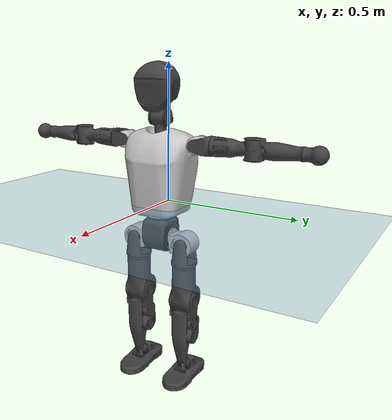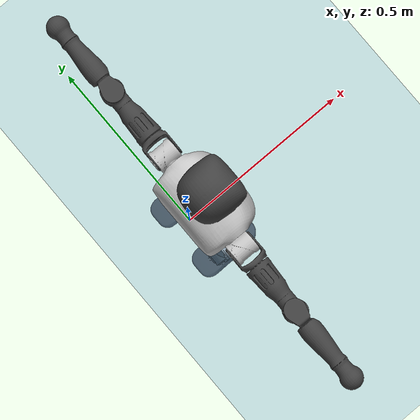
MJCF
<mujoco model="T1">
  <compiler angle="radian" assetdir="assets" balanceinertia="true" inertiafromgeom="false"/>

  <option timestep="0.005" density="1.2" viscosity="2e-05"/>

  <size nkey="1"/>

  <visual>
    <quality shadowsize="8192"/>
    <map shadowclip="0.5"/>
  </visual>

  <default>
    <default class="/">
      <joint armature="0.01" damping="0.01" frictionloss="0.1"/>
      <geom contype="0" conaffinity="0" group="1" solref="-1000 -80"/>
      <site size="0.01 0.005 0.005" group="5"/>
      <general forcelimited="true" biastype="affine" gainprm="25" biasprm="0 -25 -0.6"/>
      <default class="t1">
        <geom rgba="0.25 0.25 0.25 1"/>
        <default class="visual">
          <geom type="mesh" group="2"/>
        </default>
        <default class="collision">
          <geom group="3"/>
        </default>
        <default class="foot">
          <geom size="0.1115 0.05 0.015" type="box" condim="6" group="4" priority="1" solimp="0.015 1 0.015"/>
        </default>
        <default class="reward_collision_sphere">
          <geom group="5" rgba="1 0 0 1"/>
        </default>
      </default>
    </default>
  </default>

  <asset>
    <texture type="skybox" colorspace="auto" name="//unnamed_texture_0" builtin="gradient" rgb1="0.95 0.95 0.95" rgb2="0.95 0.95 0.95" width="100" height="600"/>
    <texture type="2d" colorspace="auto" name="texplane" builtin="checker" rgb1="0.345 0.575 0.748" rgb2="0.345 0.575 0.748" markrgb="1 1 1" width="512" height="512"/>
    <material name="MatPlane" class="/" texture="texplane" texuniform="true" texrepeat="2 2" specular="0.9"/>
    <mesh name="Trunk" class="/" file="Trunk.stl"/>
    <mesh name="H1" class="/" file="H1.stl"/>
    <mesh name="H2" class="/" file="H2.stl"/>
    <mesh name="AL1" class="/" file="AL1.stl"/>
    <mesh name="AL2" class="/" file="AL2.stl"/>
    <mesh name="AL3" class="/" file="AL3.stl"/>
    <mesh name="left_hand_link" class="/" file="left_hand_link.stl"/>
    <mesh name="AR1" class="/" file="AR1.stl"/>
    <mesh name="AR2" class="/" file="AR2.stl"/>
    <mesh name="AR3" class="/" file="AR3.stl"/>
    <mesh name="right_hand_link" class="/" file="right_hand_link.stl"/>
    <mesh name="Waist" class="/" file="Waist.stl"/>
    <mesh name="Hip_Pitch_Left" class="/" file="Hip_Pitch_Left.stl"/>
    <mesh name="Hip_Roll_Left" class="/" file="Hip_Roll_Left.stl"/>
    <mesh name="Hip_Yaw_Left" class="/" file="Hip_Yaw_Left.stl"/>
    <mesh name="Shank_Left" class="/" file="Shank_Left.stl"/>
    <mesh name="Ankle_Cross_Left" class="/" file="Ankle_Cross_Left.stl"/>
    <mesh name="left_foot_link" class="/" file="left_foot_link.stl"/>
    <mesh name="Hip_Pitch_Right" class="/" file="Hip_Pitch_Right.stl"/>
    <mesh name="Hip_Roll_Right" class="/" file="Hip_Roll_Right.stl"/>
    <mesh name="Hip_Yaw_Right" class="/" file="Hip_Yaw_Right.stl"/>
    <mesh name="Shank_Right" class="/" file="Shank_Right.stl"/>
    <mesh name="Ankle_Cross_Right" class="/" file="Ankle_Cross_Right.stl"/>
    <mesh name="right_foot_link" class="/" file="right_foot_link.stl"/>
  </asset>

  <worldbody>
    <geom name="floor" class="/" size="100 100 0.125" type="plane" group="0" material="MatPlane"/>
    <light name="toplight_shadow" class="/" pos="0 0 5" dir="0.0990148 0.0990148 -0.990148" type="directional" ambient="0.04 0.04 0.04" diffuse="0.55 0.55 0.55" specular="0.12 0.12 0.12"/>
    <light name="toplight_fill" class="/" pos="0 0 5" dir="0.0990148 0.0990148 -0.990148" type="directional" castshadow="false" ambient="0.04 0.04 0.04" diffuse="0.3 0.3 0.3" specular="0.08 0.08 0.08"/>
    <body name="trunk" childclass="t1" pos="3.52228e-05 0.000593536 -0.000294625" quat="1 -0.000117565 -9.44503e-05 0.000376963">
      <inertial pos="0.0463605 -0.000271939 0.10891" quat="0.999975 0.00123337 -0.00638034 0.00277762" mass="10.1619" diaginertia="0.0420463 0.0638207 0.0670881"/>
      <joint name="//unnamed_joint_0" type="free" armature="0" damping="0" frictionloss="0"/>
      <geom name="//unnamed_geom_1" class="visual" rgba="0.76 0.76 0.76 1" mesh="Trunk"/>
      <geom name="//unnamed_geom_2" class="collision" size="0.0713322 0.0951096 0.142664" pos="0.05126 0 0.124478" type="box"/>
      <geom name="//unnamed_geom_3" class="reward_collision_sphere" size="0.109376" pos="0.05126 0 0.103731"/>
      <geom name="//unnamed_geom_4" class="reward_collision_sphere" size="0.0142664" pos="0.05126 0.0817395 0"/>
      <geom name="//unnamed_geom_5" class="reward_collision_sphere" size="0.0142664" pos="0.05126 -0.0817395 0"/>
      <geom name="//unnamed_geom_6" class="reward_collision_sphere" size="0.0142664" pos="0.05126 0.102896 0.186716"/>
      <geom name="//unnamed_geom_7" class="reward_collision_sphere" size="0.0142664" pos="0.05126 -0.102896 0.186716"/>
      <site name="imu" pos="-0.0042321 2.29494e-05 0.00428237" size="0.00951096"/>
      <camera name="track" pos="0 -1.92328 0" quat="0.707107 0.707107 0 0" mode="trackcom"/>
      <camera name="ego_camera" pos="0.104229 0 0.435671" quat="-0.5 -0.5 0.5 0.5"/>
      <body name="H1" pos="0.0534245 -0.000245718 0.251774" quat="1 -6.96471e-05 5.59902e-05 7.89898e-06">
        <inertial pos="-0.000865661 -0.00131924 0.0595504" quat="0.763896 -0.0125527 0.00104183 0.645216" mass="0.381196" diaginertia="0.000111041 0.000184679 0.00017949"/>
        <joint name="AAHead_yaw" pos="0 0 0" axis="-0.000756842 0.00163428 0.999998" range="-1.58806 1.56819" armature="0.00945726" damping="0.00849215" frictionloss="0.0938099"/>
        <geom name="//unnamed_geom_8" class="visual" mesh="H1"/>
        <body name="H2" pos="0.000158933 -0.000897418 0.0635947" quat="1 -6.0218e-06 -6.43312e-06 -3.65948e-06">
          <inertial pos="0.00532424 0.00129216 0.101954" quat="0.988338 0.108815 -0.074225 -0.0764095" mass="0.538624" diaginertia="0.000921886 0.00156991 0.00206038"/>
          <joint name="Head_pitch" pos="0 0 0" axis="-0.000786536 -0.999999 0.000997635" range="-1.22643 0.341462" armature="0.00914506" damping="0.00802811" frictionloss="0.0951244"/>
          <geom name="//unnamed_geom_9" class="visual" mesh="H2"/>
          <geom name="//unnamed_geom_10" class="collision" size="0.0760877" pos="0.00854334 0 0.114104"/>
          <geom name="//unnamed_geom_11" class="reward_collision_sphere" size="0.0855986" pos="0.0170867 0 0.103731"/>
        </body>
      </body>
      <body name="AL1" pos="0.0503585 0.10277 0.227419" quat="1 0.000113538 0.0004544 -0.000120939">
        <inertial pos="0.0002959 0.0427918 0.000147709" quat="0.504529 0.495706 -0.503936 0.495757" mass="0.460013" diaginertia="0.000626941 0.00107033 0.000356747"/>
        <joint name="Left_Shoulder_Pitch" pos="0 0 0" axis="0.00127342 0.999996 0.00239791" range="-3.29406 1.22304" armature="0.00944899" damping="0.00604884" frictionloss="0.0919931"/>
        <geom name="//unnamed_geom_12" class="visual" rgba="0.76 0.76 0.76 1" mesh="AL1"/>
        <body name="AL2" pos="0.00124546 0.0458506 0.000310467" quat="1 -7.68003e-06 -1.03275e-05 -9.02217e-06">
          <inertial pos="0.00331003 0.0361422 0.000299115" quat="0.488293 0.51217 -0.488094 0.510898" mass="0.136673" diaginertia="0.000180724 0.000282661 0.000211785"/>
          <joint name="Left_Shoulder_Roll" pos="0 0 0" axis="-1 -3.22399e-05 -0.000192143" range="-1.58259 1.73887" armature="0.00955928" damping="0.00388922" frictionloss="0.0948959"/>
          <geom name="//unnamed_geom_13" class="visual" mesh="AL2"/>
          <body name="AL3" pos="0.000838171 0.0583497 0.000251125" quat="1 -8.18792e-05 -8.07255e-05 4.28322e-05">
            <inertial pos="-0.000705537 0.0820906 -4.86806e-05" quat="0.707301 0.706904 -0.00189048 0.00289138" mass="0.88711" diaginertia="0.00586877 0.0106272 0.000760211"/>
            <joint name="Left_Elbow_Pitch" pos="0 0 0" axis="0.0019571 -0.999998 0.000524047" stiffness="0.000829373" range="-2.27738 2.27295" armature="0.00979852" damping="0.00914919" frictionloss="0.0950444"/>
            <geom name="//unnamed_geom_14" class="visual" mesh="AL3"/>
            <geom name="//unnamed_geom_15" class="collision" size="0.0285329 0.0713322" pos="0 0.0480821 0" quat="0.707105 0.707108 0 0" type="cylinder"/>
            <geom name="//unnamed_geom_16" class="reward_collision_sphere" size="0.0342395"/>
            <body name="left_hand_link" pos="-0.000121862 0.142309 0.00164102" quat="1 -1.57704e-05 -1.20083e-05 -1.06554e-05">
              <inertial pos="-0.000158007 0.105159 0.000626466" quat="0.708054 0.706155 -0.000384459 0.00214073" mass="0.280797" diaginertia="0.00372659 0.00666376 0.000256923"/>
              <joint name="Left_Elbow_Yaw" pos="0 0 0" axis="0.000309209 -0.000767651 1" range="-2.44284 -0.00481767" armature="0.00945438" damping="0.00986616" frictionloss="0.0960206"/>
              <geom name="//unnamed_geom_17" class="visual" mesh="left_hand_link"/>
              <geom name="//unnamed_geom_18" class="collision" size="0.0285329 0.0832209" pos="0 0.125013 0" quat="0.707105 0.707108 0 0" type="cylinder"/>
              <geom name="//unnamed_geom_19" class="reward_collision_sphere" size="0.0475548"/>
              <geom name="//unnamed_geom_20" class="reward_collision_sphere" size="0.0332884" pos="0 0.105781 0"/>
              <geom name="//unnamed_geom_21" class="reward_collision_sphere" size="0.0332884" pos="0 0.206753 0"/>
            </body>
          </body>
        </body>
      </body>
      <body name="AR1" pos="0.0486173 -0.100962 0.227625" quat="1 1.85933e-05 0.000440885 -1.4013e-05">
        <inertial pos="-0.000244289 -0.0441656 -0.000473781" quat="0.507753 0.494433 -0.503488 0.494188" mass="0.460686" diaginertia="0.000630193 0.0010738 0.000353235"/>
        <joint name="Right_Shoulder_Pitch" pos="0 0 0" axis="-8.87843e-06 -1 6.23105e-05" range="-1.22401 3.32206" armature="0.00927884" damping="0.00507157" frictionloss="0.0973161"/>
        <geom name="//unnamed_geom_22" class="visual" rgba="0.76 0.76 0.76 1" mesh="AR1"/>
        <body name="AR2" pos="-0.0003994 -0.0453803 0.000733036" quat="1 -7.97501e-06 -5.27175e-06 -2.72367e-05">
          <inertial pos="0.00399548 -0.0368185 -8.76858e-05" quat="0.510526 0.487561 -0.51264 0.48872" mass="0.137917" diaginertia="0.000182423 0.00028303 0.000210706"/>
          <joint name="Right_Shoulder_Roll" pos="0 0 0" axis="-0.999977 -0.00570873 0.0036083" stiffness="0.000611142" range="-1.73917 1.57331" armature="0.00956099" damping="0.00542836" frictionloss="0.0979776"/>
          <geom name="//unnamed_geom_23" class="visual" mesh="AR2"/>
          <body name="AR3" pos="-0.00104092 -0.0582753 -0.00107712" quat="1 5.31618e-05 5.90022e-05 -3.92839e-05">
            <inertial pos="-0.000568914 -0.0819059 0.000197627" quat="0.708654 0.705554 0.000459691 0.00182278" mass="0.875522" diaginertia="0.00584441 0.0104436 0.000740518"/>
            <joint name="Right_Elbow_Pitch" pos="0 0 0" axis="-0.00237064 0.999997 0.000620777" range="-2.26421 2.28412" armature="0.00959842" damping="0.00873147" frictionloss="0.0909907"/>
            <geom name="//unnamed_geom_24" class="visual" mesh="AR3"/>
            <geom name="//unnamed_geom_25" class="collision" size="0.0285329 0.0713322" pos="0 -0.0480821 0" quat="0.707105 0.707108 0 0" type="cylinder"/>
            <geom name="//unnamed_geom_26" class="reward_collision_sphere" size="0.0342395"/>
            <body name="right_hand_link" pos="-0.000438284 -0.141234 -0.000351834" quat="1 0.000119651 -0.000302815 -0.000257959">
              <inertial pos="-0.000474986 -0.104859 0.000894658" quat="0.706194 0.708018 0.000149446 0.000146398" mass="0.282364" diaginertia="0.00374791 0.00670366 0.000259691"/>
              <joint name="Right_Elbow_Yaw" pos="0 0 0" axis="-0.00016015 0.00553378 0.999985" range="0.00237405 2.42003" armature="0.0092955" damping="0.00518339" frictionloss="0.0911859"/>
              <geom name="//unnamed_geom_27" class="visual" mesh="right_hand_link"/>
              <geom name="//unnamed_geom_28" class="collision" size="0.0285329 0.0832209" pos="0 -0.125013 0" quat="0.707105 0.707108 0 0" type="cylinder"/>
              <geom name="//unnamed_geom_29" class="reward_collision_sphere" size="0.0475548"/>
              <geom name="//unnamed_geom_30" class="reward_collision_sphere" size="0.0332884" pos="0 -0.105781 0"/>
              <geom name="//unnamed_geom_31" class="reward_collision_sphere" size="0.0332884" pos="0 -0.206753 0"/>
            </body>
          </body>
        </body>
      </body>
      <body name="Waist" pos="0.0538738 -0.000317164 -0.119307" quat="1 -1.46013e-05 6.55445e-05 -0.000142881">
        <inertial pos="0.00208665 -0.000937324 0.00794221" quat="0.983902 0.000539453 -0.178702 0.00136644" mass="2.20546" diaginertia="0.00242904 0.00434484 0.00566746"/>
        <joint name="Waist" pos="0 0 0" axis="-0.000188208 -0.000481046 1" stiffness="0.000998867" range="-1.56457 1.57733" armature="0.00948587" damping="0.00943653" frictionloss="0.0929971"/>
        <geom name="//unnamed_geom_32" class="visual" mesh="Waist"/>
        <body name="Hip_Pitch_Left" pos="-0.000133727 0.101127 -2.16649e-05" quat="1 -0.000185454 0.00029791 -0.000352235">
          <inertial pos="0.000879482 -0.00657405 -0.0186868" quat="0.975083 0.221352 0.0146771 -0.000611875" mass="0.8702" diaginertia="0.000820416 0.00119371 0.00149332"/>
          <joint name="Left_Hip_Pitch" pos="0 0 0" axis="-0.0050919 0.999986 0.00158286" range="-1.80445 1.57447" armature="0.00921611" damping="0.0110215" frictionloss="0.094775"/>
          <geom name="//unnamed_geom_33" class="visual" rgba="0.76 0.76 0.76 1" mesh="Hip_Pitch_Left"/>
          <body name="Hip_Roll_Left" pos="0.000305549 0.000652028 -0.0215958" quat="1 0.000272001 -0.000198647 -0.000252999">
            <inertial pos="0.00181834 7.35881e-05 -0.0555153" quat="0.706289 -0.00543593 -0.00550122 0.707881" mass="0.328031" diaginertia="0.000787771 0.00124 0.000615939"/>
            <joint name="Left_Hip_Roll" pos="0 0 0" axis="-1 -0.000522755 0.000187431" range="-1.5744 0.196723" armature="0.00976316" damping="0.00767678" frictionloss="0.0932357"/>
            <geom name="//unnamed_geom_34" class="visual" mesh="Hip_Roll_Left"/>
            <geom name="//unnamed_geom_35" class="reward_collision_sphere" size="0.0523103"/>
            <body name="Hip_Yaw_Left" pos="0.000789315 -6.84888e-05 -0.0850568" quat="1 -0.000112522 -7.42711e-05 -0.000156702">
              <inertial pos="-0.00616805 0.000205925 -0.0928391" quat="0.697076 -0.0339033 -0.0317096 0.715493" mass="1.87476" diaginertia="0.0116458 0.020827 0.00312123"/>
              <joint name="Left_Hip_Yaw" pos="0 0 0" axis="0.00030785 -0.00197343 -0.999998" range="-0.988486 1.00341" armature="0.00950071" damping="0.00607675" frictionloss="0.0937743"/>
              <geom name="//unnamed_geom_36" class="visual" mesh="Hip_Yaw_Left"/>
              <geom name="//unnamed_geom_37" class="collision" size="0.0475548 0.0760877" type="cylinder"/>
              <body name="Shank_Left" pos="-0.0111096 0.000580681 -0.139472" quat="1 0.000213099 -0.000123535 -0.000108807">
                <inertial pos="-0.00509472 0.00109361 -0.128761" quat="0.997715 0.0022516 -0.021217 0.0641078" mass="1.45972" diaginertia="0.0156358 0.0280526 0.00221316"/>
                <joint name="Left_Knee_Pitch" pos="0 0 0" axis="0.00107408 0.999999 -0.000587588" stiffness="0.000658081" range="0.00321721 2.35333" armature="0.00936221" damping="0.0134268" frictionloss="0.0928901"/>
                <geom name="//unnamed_geom_38" class="visual" mesh="Shank_Left"/>
                <geom name="//unnamed_geom_39" class="collision" size="0.0475548 0.0713322" pos="0 0 -0.124478" type="cylinder"/>
                <geom name="//unnamed_geom_40" class="reward_collision_sphere" size="0.0618212"/>
                <body name="Ankle_Cross_Left" pos="-0.00118991 -0.000806261 -0.289886" quat="1 3.53108e-05 -1.16968e-06 1.29633e-05">
                  <inertial pos="-0.00254155 -0.000337548 -0.00822326" quat="0.446416 0.550586 0.550504 0.441036" mass="0.0627784" diaginertia="1.31704e-05 2.09796e-05 1.34795e-05"/>
                  <joint name="Left_Ankle_Pitch" pos="0 0 0" axis="-0.00230093 0.999996 -0.00153493" range="-0.866952 0.355343" armature="0.00956018" damping="0.00989159" frictionloss="0.0937548"/>
                  <geom name="//unnamed_geom_41" class="visual" mesh="Ankle_Cross_Left"/>
                  <body name="left_foot_link" pos="2.28139e-05 3.81668e-05 -0.0127139" quat="1 2.16381e-05 -0.000157748 5.38157e-05">
                    <inertial pos="-0.000502655 0.000483831 -0.0089341" quat="0.00189791 0.619793 0.000754593 0.784763" mass="0.583763" diaginertia="0.00121363 0.00195683 0.00261215"/>
                    <joint name="Left_Ankle_Roll" pos="0 0 0" axis="-0.999998 -0.000403306 -0.00169729" range="-0.445502 0.442721" armature="0.00969416" damping="0.0148155" frictionloss="0.0941729"/>
                    <geom name="//unnamed_geom_42" class="visual" mesh="left_foot_link"/>
                    <geom name="left_foot" class="foot" size="0.106731 0.0474004 0.0148135" pos="0.00854334 0 -0.0155597"/>
                    <geom name="//unnamed_geom_44" class="reward_collision_sphere" size="0.049457" pos="0.00854334 0 -0.0155597"/>
                    <geom name="//unnamed_geom_45" class="reward_collision_sphere" size="0.0285329" pos="0.0811617 -0.0221178 -0.0155597"/>
                    <geom name="//unnamed_geom_46" class="reward_collision_sphere" size="0.0285329" pos="-0.0598034 -0.0221178 -0.0155597"/>
                    <site name="left_foot" class="foot" pos="0.00854334 0 -0.0155597" size="0.00951096"/>
                  </body>
                </body>
              </body>
            </body>
          </body>
        </body>
        <body name="Hip_Pitch_Right" pos="9.51282e-05 -0.101606 0.000765081" quat="1 0.000512798 0.000254965 -0.000188033">
          <inertial pos="0.000234615 0.00647895 -0.0186567" quat="0.973427 -0.228371 0.0147732 -0.00822961" mass="0.86955" diaginertia="0.000822067 0.00120044 0.0014973"/>
          <joint name="Right_Hip_Pitch" pos="0 0 0" axis="0.000216295 -0.999992 0.00390763" stiffness="0.00272521" range="-1.55407 1.79406" armature="0.00975885" damping="0.00586596" frictionloss="0.0960941"/>
          <geom name="//unnamed_geom_47" class="visual" rgba="0.76 0.76 0.76 1" mesh="Hip_Pitch_Right"/>
          <body name="Hip_Roll_Right" pos="0.000259286 0.000884307 -0.0201198" quat="1 0.000421739 -0.000287449 -4.41754e-06">
            <inertial pos="0.00123757 0.000203686 -0.0558248" quat="0.706121 -0.00580915 -0.00704786 0.708033" mass="0.32918" diaginertia="0.000784382 0.00125288 0.000620936"/>
            <joint name="Right_Hip_Roll" pos="0 0 0" axis="-0.999989 0.00393135 0.00271137" stiffness="0.00024384" range="-0.19634 1.56819" armature="0.00932443" damping="0.00749403" frictionloss="0.0947383"/>
            <geom name="//unnamed_geom_48" class="visual" mesh="Hip_Roll_Right"/>
            <geom name="//unnamed_geom_49" class="reward_collision_sphere" size="0.0523103"/>
            <body name="Hip_Yaw_Right" pos="0.000675795 0.0010496 -0.0855413" quat="1 -1.49088e-05 9.08765e-05 7.33105e-05">
              <inertial pos="-0.00661138 0.000391848 -0.0921654" quat="0.714402 -0.0316013 -0.0335938 0.698214" mass="1.8427" diaginertia="0.0116272 0.0207428 0.00311274"/>
              <joint name="Right_Hip_Yaw" pos="0 0 0" axis="0.0014967 -0.00162577 -0.999998" range="-1.01494 1.01608" armature="0.0092126" damping="0.005406" frictionloss="0.0948698"/>
              <geom name="//unnamed_geom_50" class="visual" mesh="Hip_Yaw_Right"/>
              <geom name="//unnamed_geom_51" class="collision" size="0.0475548 0.0760877" type="cylinder"/>
              <body name="Shank_Right" pos="-0.0125581 -0.000647838 -0.139376" quat="1 7.1328e-07 -5.99979e-06 -1.26686e-06">
                <inertial pos="-0.00514965 -0.00105165 -0.127083" quat="0.999328 -0.00362885 -0.0237864 -0.0276402" mass="1.55401" diaginertia="0.0161752 0.0288662 0.002381"/>
                <joint name="Right_Knee_Pitch" pos="0 0 0" axis="-0.00442443 -0.999983 0.0038855" range="-2.35377 0.00887734" armature="0.0094381" damping="0.00436283" frictionloss="0.0951359"/>
                <geom name="//unnamed_geom_52" class="visual" mesh="Shank_Right"/>
                <geom name="//unnamed_geom_53" class="collision" size="0.0475548 0.0713322" pos="0 0 -0.124478" type="cylinder"/>
                <geom name="//unnamed_geom_54" class="reward_collision_sphere" size="0.0618212"/>
                <body name="Ankle_Cross_Right" pos="-0.000788938 -0.000232377 -0.290104" quat="1 -2.70361e-06 -0.000287979 -3.33218e-05">
                  <inertial pos="-0.00316668 0.000103501 -0.00903004" quat="0.445587 0.549491 0.549578 0.444383" mass="0.0626309" diaginertia="1.32678e-05 2.10869e-05 1.3712e-05"/>
                  <joint name="Right_Ankle_Pitch" pos="0 0 0" axis="-0.00106476 -0.999997 0.00203669" range="-0.34013 0.862952" armature="0.00940507" damping="0.0057753" frictionloss="0.0947398"/>
                  <geom name="//unnamed_geom_55" class="visual" mesh="Ankle_Cross_Right"/>
                  <body name="right_foot_link" pos="-0.000118043 -0.000942437 -0.0118719" quat="1 -3.21103e-05 9.2254e-05 -9.29392e-05">
                    <inertial pos="0.000237579 0.000289858 -0.00887106" quat="0.0020569 0.619815 0.000125977 0.784745" mass="0.588063" diaginertia="0.00122378 0.00195934 0.00265598"/>
                    <joint name="Right_Ankle_Roll" pos="0 0 0" axis="-0.999988 -0.00194429 0.00446261" range="-0.425429 0.442526" armature="0.00931372" damping="0.00764173" frictionloss="0.0991537"/>
                    <geom name="//unnamed_geom_56" class="visual" mesh="right_foot_link"/>
                    <geom name="right_foot" class="foot" size="0.102566 0.0484223 0.014925" pos="0.00854334 0 -0.0155597"/>
                    <geom name="//unnamed_geom_58" class="reward_collision_sphere" size="0.0380438"/>
                    <geom name="//unnamed_geom_59" class="reward_collision_sphere" size="0.0285329" pos="0.00854334 0 -0.0155597"/>
                    <geom name="//unnamed_geom_60" class="reward_collision_sphere" size="0.0285329" pos="0.0811617 0.0221178 -0.0155597"/>
                    <geom name="//unnamed_geom_61" class="reward_collision_sphere" size="0.0285329" pos="-0.0598034 0.0221178 -0.0155597"/>
                    <site name="right_foot" class="foot" pos="0.00854334 0 -0.0155597" size="0.00951096"/>
                  </body>
                </body>
              </body>
            </body>
          </body>
        </body>
      </body>
    </body>
  </worldbody>

  <contact>
    <pair class="/" geom1="floor" geom2="left_foot" name="//unnamed_contact_0"/>
    <pair class="/" geom1="floor" geom2="right_foot" name="//unnamed_contact_1"/>
  </contact>

  <actuator>
    <general name="AAHead_yaw" class="/" joint="AAHead_yaw" forcerange="-6.85366 6.85366" gainprm="23.3329" biasprm="0 -23.3329 -0.549795"/>
    <general name="Head_pitch" class="/" joint="Head_pitch" forcerange="-6.44186 6.44186" gainprm="23.3329" biasprm="0 -23.3329 -0.549795"/>
    <general name="Left_Shoulder_Pitch" class="/" joint="Left_Shoulder_Pitch" forcerange="-16.7715 16.7715" gainprm="23.3329" biasprm="0 -23.3329 -0.549795"/>
    <general name="Left_Shoulder_Roll" class="/" joint="Left_Shoulder_Roll" forcerange="-16.6725 16.6725" gainprm="23.3329" biasprm="0 -23.3329 -0.549795"/>
    <general name="Left_Elbow_Pitch" class="/" joint="Left_Elbow_Pitch" forcerange="-17.3373 17.3373" gainprm="23.3329" biasprm="0 -23.3329 -0.549795"/>
    <general name="Left_Elbow_Yaw" class="/" joint="Left_Elbow_Yaw" forcerange="-17.3207 17.3207" gainprm="23.3329" biasprm="0 -23.3329 -0.549795"/>
    <general name="Right_Shoulder_Pitch" class="/" joint="Right_Shoulder_Pitch" forcerange="-17.2692 17.2692" gainprm="23.3329" biasprm="0 -23.3329 -0.549795"/>
    <general name="Right_Shoulder_Roll" class="/" joint="Right_Shoulder_Roll" forcerange="-16.9792 16.9792" gainprm="23.3329" biasprm="0 -23.3329 -0.549795"/>
    <general name="Right_Elbow_Pitch" class="/" joint="Right_Elbow_Pitch" forcerange="-17.4916 17.4916" gainprm="23.3329" biasprm="0 -23.3329 -0.549795"/>
    <general name="Right_Elbow_Yaw" class="/" joint="Right_Elbow_Yaw" forcerange="-16.7187 16.7187" gainprm="23.3329" biasprm="0 -23.3329 -0.549795"/>
    <general name="Waist" class="/" joint="Waist" forcerange="-29.2029 29.2029" gainprm="23.3329" biasprm="0 -23.3329 -0.549795"/>
    <general name="Left_Hip_Pitch" class="/" joint="Left_Hip_Pitch" forcerange="-42.302 42.302" gainprm="23.3329" biasprm="0 -23.3329 -0.549795"/>
    <general name="Left_Hip_Roll" class="/" joint="Left_Hip_Roll" forcerange="-28.3866 28.3866" gainprm="23.3329" biasprm="0 -23.3329 -0.549795"/>
    <general name="Left_Hip_Yaw" class="/" joint="Left_Hip_Yaw" forcerange="-28.1172 28.1172" gainprm="23.3329" biasprm="0 -23.3329 -0.549795"/>
    <general name="Left_Knee_Pitch" class="/" joint="Left_Knee_Pitch" forcerange="-57.8611 57.8611" gainprm="23.3329" biasprm="0 -23.3329 -0.549795"/>
    <general name="Left_Ankle_Pitch" class="/" joint="Left_Ankle_Pitch" forcerange="-19.2941 19.2941" gainprm="23.3329" biasprm="0 -23.3329 -0.549795"/>
    <general name="Left_Ankle_Roll" class="/" joint="Left_Ankle_Roll" forcerange="-13.9035 13.9035" gainprm="23.3329" biasprm="0 -23.3329 -0.549795"/>
    <general name="Right_Hip_Pitch" class="/" joint="Right_Hip_Pitch" forcerange="-42.9899 42.9899" gainprm="23.3329" biasprm="0 -23.3329 -0.549795"/>
    <general name="Right_Hip_Roll" class="/" joint="Right_Hip_Roll" forcerange="-29.1837 29.1837" gainprm="23.3329" biasprm="0 -23.3329 -0.549795"/>
    <general name="Right_Hip_Yaw" class="/" joint="Right_Hip_Yaw" forcerange="-28.6118 28.6118" gainprm="23.3329" biasprm="0 -23.3329 -0.549795"/>
    <general name="Right_Knee_Pitch" class="/" joint="Right_Knee_Pitch" forcerange="-57.7131 57.7131" gainprm="23.3329" biasprm="0 -23.3329 -0.549795"/>
    <general name="Right_Ankle_Pitch" class="/" joint="Right_Ankle_Pitch" forcerange="-19.1104 19.1104" gainprm="23.3329" biasprm="0 -23.3329 -0.549795"/>
    <general name="Right_Ankle_Roll" class="/" joint="Right_Ankle_Roll" forcerange="-14.3277 14.3277" gainprm="23.3329" biasprm="0 -23.3329 -0.549795"/>
  </actuator>

  <sensor>
    <gyro site="imu" name="imu_angular_velocity"/>
    <velocimeter site="imu" name="imu_linear_velocity"/>
    <framelinvel objtype="site" objname="left_foot" name="left_foot_global_linear_velocity"/>
    <framelinvel objtype="site" objname="right_foot" name="right_foot_global_linear_velocity"/>
  </sensor>

  <keyframe>
    <key name="home" qpos="0 0 0.6385 1 0 0 0 0 0 0 1.4 0 -0.4 0 -1.4 0 0.4 0 -0.4 0 0 0.8 -0.4 0 0.4 0 0 -0.8 0.4 0"/>
  </keyframe>
</mujoco>
